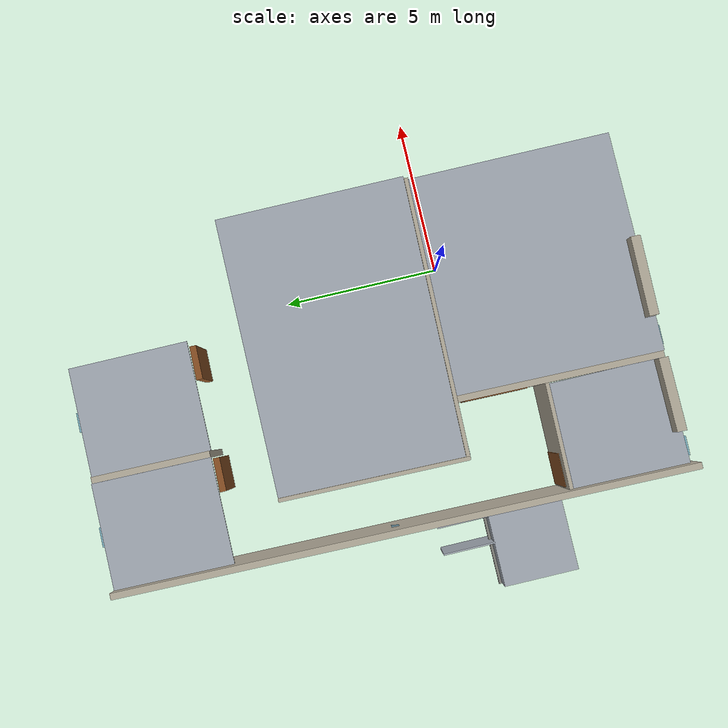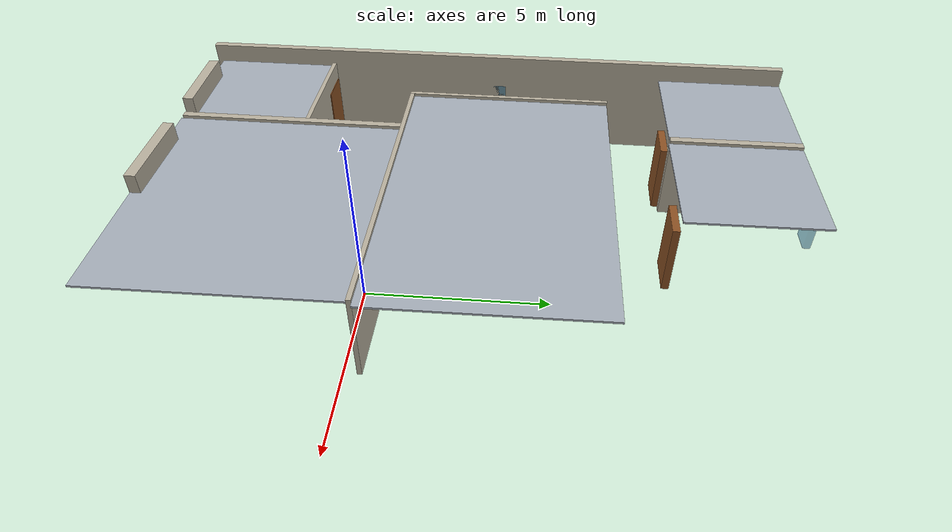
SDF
<sdf version="1.10">
 <world name="deltaseek_ifc_nominal">
  <model name="ifc_05LeiFLbH7dBxLmOb3F9k5_83ceb4d6">
   <static>true</static>
   <pose>-5.55282702 0.543890736 1.0287 0 0 -0.015721382</pose>
   <link name="link">
    <collision name="collision"><geometry><box><size>1.0668 0.174625 2.0574</size></box></geometry></collision>
    <visual name="visual">
     <geometry><box><size>1.0668 0.174625 2.0574</size></box></geometry>
     <material><ambient>0.55 0.32 0.14 1</ambient><diffuse>0.55 0.32 0.14 1</diffuse></material>
    </visual>
   </link>
  </model>
  <model name="ifc_05LeiFLbH7dBxLmOb3F9l5_79d11419">
   <static>true</static>
   <pose>-4.36399862 -0.789413286 1.0287 0 0 -1.58651771</pose>
   <link name="link">
    <collision name="collision"><geometry><box><size>1.9812 0.254 2.0574</size></box></geometry></collision>
    <visual name="visual">
     <geometry><box><size>1.9812 0.254 2.0574</size></box></geometry>
     <material><ambient>0.55 0.32 0.14 1</ambient><diffuse>0.55 0.32 0.14 1</diffuse></material>
    </visual>
   </link>
  </model>
  <model name="ifc_0KvanlNQrCphrCb4tAxX_i_1dc17cf0">
   <static>true</static>
   <pose>-4.20815132 10.0392629 1.2954 0 0 -1.58311292</pose>
   <link name="link">
    <collision name="collision"><geometry><box><size>3.685307 0.2032 2.5908</size></box></geometry></collision>
    <visual name="visual">
     <geometry><box><size>3.685307 0.2032 2.5908</size></box></geometry>
     <material><ambient>0.72 0.69 0.62 1</ambient><diffuse>0.72 0.69 0.62 1</diffuse></material>
    </visual>
   </link>
  </model>
  <model name="ifc_0KvanlNQrCphrCb4tAxkC2_9b38d0d1">
   <static>true</static>
   <pose>-4.39541128 -2.78733366 1.2954 0 0 -1.58651771</pose>
   <link name="link">
    <collision name="collision"><geometry><box><size>6.50140961 0.2032 2.5908</size></box></geometry></collision>
    <visual name="visual">
     <geometry><box><size>6.50140961 0.2032 2.5908</size></box></geometry>
     <material><ambient>0.72 0.69 0.62 1</ambient><diffuse>0.72 0.69 0.62 1</diffuse></material>
    </visual>
   </link>
  </model>
  <model name="ifc_0KvanlNQrCphrCb4tAxkhO_549faddc">
   <static>true</static>
   <pose>-1.7069162 0.483422723 1.2954 0 0 -0.015721382</pose>
   <link name="link">
    <collision name="collision"><geometry><box><size>8.8135473 0.123825 2.5908</size></box></geometry></collision>
    <visual name="visual">
     <geometry><box><size>8.8135473 0.123825 2.5908</size></box></geometry>
     <material><ambient>0.72 0.69 0.62 1</ambient><diffuse>0.72 0.69 0.62 1</diffuse></material>
    </visual>
   </link>
  </model>
  <model name="ifc_0KvanlNQrCphrCb4tAxklk_9cbd1854">
   <static>true</static>
   <pose>-6.12889309 3.48937198 1.2954 0 0 -1.58651771</pose>
   <link name="link">
    <collision name="collision">
     <geometry><box><size>5.99594713 0.123825 2.5908</size></box></geometry>
    </collision>
    <visual name="visual">
     <geometry><box><size>5.99594713 0.123825 2.5908</size></box></geometry>
     <material><ambient>0.72 0.69 0.62 1</ambient><diffuse>0.72 0.69 0.62 1</diffuse></material>
    </visual>
   </link>
  </model>
  <model name="ifc_0KvanlNQrCphrCb4tAxkqw_afb182ba">
   <static>true</static>
   <pose>-5.69525598 -5.85825521 1.524 0 0 3.14159265</pose>
   <link name="link">
    <collision name="collision"><geometry><box><size>2.286 0.3048 3.048</size></box></geometry></collision>
    <visual name="visual">
     <geometry><box><size>2.286 0.3048 3.048</size></box></geometry>
     <material><ambient>0.72 0.69 0.62 1</ambient><diffuse>0.72 0.69 0.62 1</diffuse></material>
    </visual>
   </link>
  </model>
  <model name="ifc_0KvanlNQrCphrCb4tAxkta_85419f7b">
   <static>true</static>
   <pose>-1.99850303 -5.93640721 1.524 0 0 3.12587127</pose>
   <link name="link">
    <collision name="collision"><geometry><box><size>2.4892 0.3048 3.048</size></box></geometry></collision>
    <visual name="visual">
     <geometry><box><size>2.4892 0.3048 3.048</size></box></geometry>
     <material><ambient>0.72 0.69 0.62 1</ambient><diffuse>0.72 0.69 0.62 1</diffuse></material>
    </visual>
   </link>
  </model>
  <model name="ifc_1abtvTofT8EB1v01F0DlAk_0605fd5f">
   <static>true</static>
   <pose>-7.82387714 2.87308504 1.524 0 0 -1.58651771</pose>
   <link name="link">
    <collision name="collision"><geometry><box><size>18.119452 0.2032 3.048</size></box></geometry></collision>
    <visual name="visual">
     <geometry><box><size>18.119452 0.2032 3.048</size></box></geometry>
     <material><ambient>0.72 0.69 0.62 1</ambient><diffuse>0.72 0.69 0.62 1</diffuse></material>
    </visual>
   </link>
  </model>
  <model name="ifc_1ccFJmoz1FOhtUmg41tu60_6c91f71c">
   <static>true</static>
   <pose>-9.26961815 -0.935102746 0.4572 0 0 0</pose>
   <link name="link">
    <collision name="collision">
     <geometry><box><size>2.36977306 2.4104698 0.9144</size></box></geometry>
    </collision>
    <visual name="visual">
     <geometry><box><size>2.36977306 2.4104698 0.9144</size></box></geometry>
     <material><ambient>0.65 0.68 0.72 1</ambient><diffuse>0.65 0.68 0.72 1</diffuse></material>
    </visual>
   </link>
  </model>
  <model name="ifc_1ccFJmoz1FOhtUmg41tuPp_e4dd8493">
   <static>true</static>
   <pose>-8.17624986 1.08822352 -0.050574106 0 0 0</pose>
   <link name="link">
    <collision name="collision"><geometry><box><size>0.0508 1.6764 1.92994821</size></box></geometry></collision>
    <visual name="visual">
     <geometry><box><size>0.0508 1.6764 1.92994821</size></box></geometry>
     <material><ambient>0.65 0.68 0.72 1</ambient><diffuse>0.65 0.68 0.72 1</diffuse></material>
    </visual>
   </link>
  </model>
  <model name="ifc_1ccFJmoz1FOhtUmg41tuPt_edc69a4a">
   <static>true</static>
   <pose>-9.03984986 1.08822352 -0.050574106 0 0 0</pose>
   <link name="link">
    <collision name="collision"><geometry><box><size>0.0508 1.6764 1.92994821</size></box></geometry></collision>
    <visual name="visual">
     <geometry><box><size>0.0508 1.6764 1.92994821</size></box></geometry>
     <material><ambient>0.65 0.68 0.72 1</ambient><diffuse>0.65 0.68 0.72 1</diffuse></material>
    </visual>
   </link>
  </model>
  <model name="ifc_1pMTU_U0n8Z8G77fSA9Y0a_966fd325">
   <static>true</static>
   <pose>-9.22295009 -0.853720591 -0.0762 0 0 0</pose>
   <link name="link">
    <collision name="collision">
     <geometry><box><size>2.51304755 2.42674524 0.1524</size></box></geometry>
    </collision>
    <visual name="visual">
     <geometry><box><size>2.51304755 2.42674524 0.1524</size></box></geometry>
     <material><ambient>0.5 0.5 0.48 1</ambient><diffuse>0.5 0.5 0.48 1</diffuse></material>
    </visual>
   </link>
  </model>
  <model name="ifc_1s7WttW8LF3wo3GFHzG43H_f564207d">
   <static>true</static>
   <pose>-2.35054735 11.9569587 1.33985 0 0 -0.014292658</pose>
   <link name="link">
    <collision name="collision"><geometry><box><size>0.6096 0.2032 1.3716</size></box></geometry></collision>
    <visual name="visual">
     <geometry><box><size>0.6096 0.2032 1.3716</size></box></geometry>
     <material><ambient>0.25 0.55 0.72 0.55</ambient><diffuse>0.25 0.55 0.72 0.55</diffuse></material>
    </visual>
   </link>
  </model>
  <model name="ifc_1s7WttW8LF3wo3GFHzG456_aa0284a8">
   <static>true</static>
   <pose>-5.95697896 12.0085077 1.33985 0 0 -0.014292658</pose>
   <link name="link">
    <collision name="collision"><geometry><box><size>0.6096 0.2032 1.3716</size></box></geometry></collision>
    <visual name="visual">
     <geometry><box><size>0.6096 0.2032 1.3716</size></box></geometry>
     <material><ambient>0.25 0.55 0.72 0.55</ambient><diffuse>0.25 0.55 0.72 0.55</diffuse></material>
    </visual>
   </link>
  </model>
  <model name="ifc_1s7WttW8LF3wo3GFHzG4AM_e522794f">
   <static>true</static>
   <pose>-7.71054225 10.0814566 1.33985 0 0 1.55507495</pose>
   <link name="link">
    <collision name="collision"><geometry><box><size>0.6096 0.2032 1.3716</size></box></geometry></collision>
    <visual name="visual">
     <geometry><box><size>0.6096 0.2032 1.3716</size></box></geometry>
     <material><ambient>0.25 0.55 0.72 0.55</ambient><diffuse>0.25 0.55 0.72 0.55</diffuse></material>
    </visual>
   </link>
  </model>
  <model name="ifc_1s7WttW8LF3wo3GFHzG4Bb_dd38c917">
   <static>true</static>
   <pose>-7.82133147 3.03499637 1.33985 0 0 1.55507495</pose>
   <link name="link">
    <collision name="collision"><geometry><box><size>0.6096 0.2032 1.3716</size></box></geometry></collision>
    <visual name="visual">
     <geometry><box><size>0.6096 0.2032 1.3716</size></box></geometry>
     <material><ambient>0.25 0.55 0.72 0.55</ambient><diffuse>0.25 0.55 0.72 0.55</diffuse></material>
    </visual>
   </link>
  </model>
  <model name="ifc_1s7WttW8LF3wo3GFHzG7HH_9779102a">
   <static>true</static>
   <pose>-5.96247575 10.0640473 2.466975 0 0 0</pose>
   <link name="link">
    <collision name="collision">
     <geometry><box><size>3.35085356 3.73209376 0.05715</size></box></geometry>
    </collision>
    <visual name="visual">
     <geometry><box><size>3.35085356 3.73209376 0.05715</size></box></geometry>
     <material><ambient>0.65 0.68 0.72 1</ambient><diffuse>0.65 0.68 0.72 1</diffuse></material>
    </visual>
   </link>
  </model>
  <model name="ifc_1s7WttW8LF3wo3GFHzG7HP_220b1366">
   <static>true</static>
   <pose>-2.41067431 10.0170771 2.466975 0 0 0</pose>
   <link name="link">
    <collision name="collision">
     <geometry><box><size>3.4371587 3.72609334 0.05715</size></box></geometry>
    </collision>
    <visual name="visual">
     <geometry><box><size>3.4371587 3.72609334 0.05715</size></box></geometry>
     <material><ambient>0.65 0.68 0.72 1</ambient><diffuse>0.65 0.68 0.72 1</diffuse></material>
    </visual>
   </link>
  </model>
  <model name="ifc_1s7WttW8LF3wo3GFHzG7lb_1ae3afd8">
   <static>true</static>
   <pose>-1.65968664 3.4810258 2.466975 0 0 0</pose>
   <link name="link">
    <collision name="collision">
     <geometry><box><size>8.90497065 6.0099519 0.05715</size></box></geometry>
    </collision>
    <visual name="visual">
     <geometry><box><size>8.90497065 6.0099519 0.05715</size></box></geometry>
     <material><ambient>0.65 0.68 0.72 1</ambient><diffuse>0.65 0.68 0.72 1</diffuse></material>
    </visual>
   </link>
  </model>
  <model name="ifc_1s7WttW8LF3wo3GFHzG7lv_43dbc6ef">
   <static>true</static>
   <pose>-6.19477879 -4.17001321 2.466975 0 0 0</pose>
   <link name="link">
    <collision name="collision">
     <geometry><box><size>3.33383177 3.681284 0.05715</size></box></geometry>
    </collision>
    <visual name="visual">
     <geometry><box><size>3.33383177 3.681284 0.05715</size></box></geometry>
     <material><ambient>0.65 0.68 0.72 1</ambient><diffuse>0.65 0.68 0.72 1</diffuse></material>
    </visual>
   </link>
  </model>
  <model name="ifc_1s7WttW8LF3wo3GFHzG7mz_89ff866e">
   <static>true</static>
   <pose>-7.93415848 -4.14107248 1.33985 0 0 1.55507495</pose>
   <link name="link">
    <collision name="collision"><geometry><box><size>0.6096 0.2032 1.3716</size></box></geometry></collision>
    <visual name="visual">
     <geometry><box><size>0.6096 0.2032 1.3716</size></box></geometry>
     <material><ambient>0.25 0.55 0.72 0.55</ambient><diffuse>0.25 0.55 0.72 0.55</diffuse></material>
    </visual>
   </link>
  </model>
  <model name="ifc_1s7WttW8LF3wo3GFHzG7nx_3797a564">
   <static>true</static>
   <pose>-7.38077728 -6.09311484 1.33985 0 0 3.12587127</pose>
   <link name="link">
    <collision name="collision"><geometry><box><size>0.6096 0.2032 1.3716</size></box></geometry></collision>
    <visual name="visual">
     <geometry><box><size>0.6096 0.2032 1.3716</size></box></geometry>
     <material><ambient>0.25 0.55 0.72 0.55</ambient><diffuse>0.25 0.55 0.72 0.55</diffuse></material>
    </visual>
   </link>
  </model>
  <model name="ifc_1s7WttW8LF3wo3GFHzG7uC_69bc2a8c">
   <static>true</static>
   <pose>-3.83878693 -6.14880441 1.33985 0 0 3.12587127</pose>
   <link name="link">
    <collision name="collision"><geometry><box><size>0.6096 0.2032 1.3716</size></box></geometry></collision>
    <visual name="visual">
     <geometry><box><size>0.6096 0.2032 1.3716</size></box></geometry>
     <material><ambient>0.25 0.55 0.72 0.55</ambient><diffuse>0.25 0.55 0.72 0.55</diffuse></material>
    </visual>
   </link>
  </model>
  <model name="ifc_2ASREFGDX0cRYE_pE9Hn_G_6beeccb4">
   <static>true</static>
   <pose>-9.09064986 1.08822352 -0.570987456 0 0 0</pose>
   <link name="link">
    <collision name="collision"><geometry><box><size>0.0508 1.6764 1.22763758</size></box></geometry></collision>
    <visual name="visual">
     <geometry><box><size>0.0508 1.6764 1.22763758</size></box></geometry>
     <material><ambient>0.65 0.68 0.72 1</ambient><diffuse>0.65 0.68 0.72 1</diffuse></material>
    </visual>
   </link>
  </model>
  <model name="ifc_2ASREFGDX0cRYE_pE9Hn_N_25b83375">
   <static>true</static>
   <pose>-8.12544986 1.08822352 -0.570987456 0 0 0</pose>
   <link name="link">
    <collision name="collision"><geometry><box><size>0.0508 1.6764 1.22763758</size></box></geometry></collision>
    <visual name="visual">
     <geometry><box><size>0.0508 1.6764 1.22763758</size></box></geometry>
     <material><ambient>0.65 0.68 0.72 1</ambient><diffuse>0.65 0.68 0.72 1</diffuse></material>
    </visual>
   </link>
  </model>
  <model name="ifc_2UiYIxdTHDMQxEBYlcr4sm_bf5a8116">
   <static>true</static>
   <pose>-0.839897504 -2.81855021 2.466975 0 0 0</pose>
   <link name="link">
    <collision name="collision">
     <geometry><box><size>7.010253 6.55984482 0.05715</size></box></geometry>
    </collision>
    <visual name="visual">
     <geometry><box><size>7.010253 6.55984482 0.05715</size></box></geometry>
     <material><ambient>0.65 0.68 0.72 1</ambient><diffuse>0.65 0.68 0.72 1</diffuse></material>
    </visual>
   </link>
  </model>
  <model name="ifc_38qgW_sXr868lESAj2QZHb_6d36238f">
   <static>true</static>
   <pose>-4.91753244 8.12900141 1.0287 0 0 -0.012316592</pose>
   <link name="link">
    <collision name="collision"><geometry><box><size>1.0668 0.2032 2.0574</size></box></geometry></collision>
    <visual name="visual">
     <geometry><box><size>1.0668 0.2032 2.0574</size></box></geometry>
     <material><ambient>0.55 0.32 0.14 1</ambient><diffuse>0.55 0.32 0.14 1</diffuse></material>
    </visual>
   </link>
  </model>
  <model name="ifc_38qgW_sXr868lESAj2QZIc_7765df53">
   <static>true</static>
   <pose>-1.36180215 8.08520471 1.0287 0 0 -0.012316592</pose>
   <link name="link">
    <collision name="collision"><geometry><box><size>1.0668 0.2032 2.0574</size></box></geometry></collision>
    <visual name="visual">
     <geometry><box><size>1.0668 0.2032 2.0574</size></box></geometry>
     <material><ambient>0.55 0.32 0.14 1</ambient><diffuse>0.55 0.32 0.14 1</diffuse></material>
    </visual>
   </link>
  </model>
  <model name="ifc_38qgW_sXr868lESAj2QZQT_f5fd1d9a">
   <static>true</static>
   <pose>-7.22530923 -2.27655059 1.0287 0 0 3.12587127</pose>
   <link name="link">
    <collision name="collision"><geometry><box><size>1.0668 0.174625 2.0574</size></box></geometry></collision>
    <visual name="visual">
     <geometry><box><size>1.0668 0.174625 2.0574</size></box></geometry>
     <material><ambient>0.55 0.32 0.14 1</ambient><diffuse>0.55 0.32 0.14 1</diffuse></material>
    </visual>
   </link>
  </model>
  <model name="ifc_38qgW_sXr868lESAj2QZRq_fa50cff0">
   <static>true</static>
   <pose>-6.14637852 -2.29351427 1.2954 0 0 3.12587127</pose>
   <link name="link">
    <collision name="collision">
     <geometry><box><size>3.31382812 0.123825 2.5908</size></box></geometry>
    </collision>
    <visual name="visual">
     <geometry><box><size>3.31382812 0.123825 2.5908</size></box></geometry>
     <material><ambient>0.72 0.69 0.62 1</ambient><diffuse>0.72 0.69 0.62 1</diffuse></material>
    </visual>
   </link>
  </model>
  <model name="ifc_3xoURert943RLFHAzdmQBo_4312fe20">
   <static>true</static>
   <pose>-7.92228408 -1.41669727 1.1176 0 0 1.55507495</pose>
   <link name="link">
    <collision name="collision"><geometry><box><size>1.016 0.2016125 2.2352</size></box></geometry></collision>
    <visual name="visual">
     <geometry><box><size>1.016 0.2016125 2.2352</size></box></geometry>
     <material><ambient>0.55 0.32 0.14 1</ambient><diffuse>0.55 0.32 0.14 1</diffuse></material>
    </visual>
   </link>
  </model>
 </world>
</sdf>
